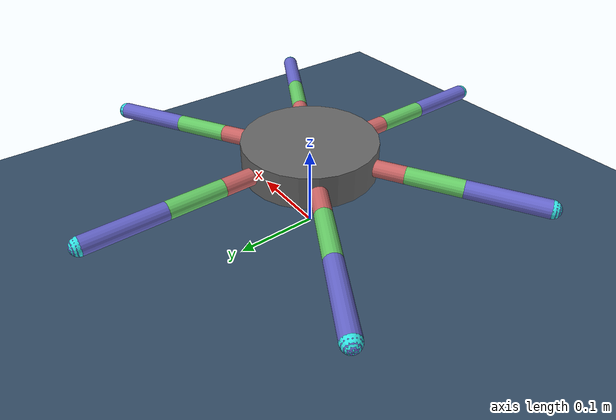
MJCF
<?xml version='1.0' encoding='utf-8'?>
<mujoco model="hexapod"><compiler angle="radian" coordinate="local" /><option timestep="0.003" gravity="0 0 -9.81" integrator="implicitfast" iterations="80" ls_iterations="20" /><option timestep="0.01" gravity="0 0 -9.81" /><default><geom type="capsule" size="0.01" density="500" rgba="0.6 0.6 0.6 1" friction="1.0 0.02 0.002" solref="0.004 1" solimp="0.90 0.95 0.001" /><joint damping="2.5" armature="0.01" limited="true" /><position kp="20" kv="9" /></default><worldbody><geom name="floor" type="plane" size="5 5 0.1" rgba="0.2 0.3 0.4 1" /><body name="torso" pos="0.000000 0.000000 0.100000"><freejoint /><geom name="torso_geom" type="cylinder" size="0.080562 0.020000" rgba="0.4 0.4 0.4 1" /><body name="leg0_hip" pos="0.069769 0.040281 0.000000" euler="0.000000 0.000000 0.523599"><joint name="leg0_coxa" type="hinge" axis="0 0 1" range="-1.047198 1.047198" /><geom name="leg0_coxa_geom" fromto="0.000000 0.000000 0.000000 0.034500 0.000000 0.000000" rgba="0.8 0.4 0.4 1" /><body name="leg0_femur_body" pos="0.034500 0.000000 0.000000"><joint name="leg0_femur" type="hinge" axis="0 -1 0" range="-1.570796 1.570796" /><geom name="leg0_femur_geom" fromto="0.000000 0.000000 0.000000 0.064000 0.000000 0.000000" rgba="0.4 0.8 0.4 1" /><body name="leg0_tibia_body" pos="0.064000 0.000000 0.000000"><joint name="leg0_tibia" type="hinge" axis="0 -1 0" range="-2.443461 0.000000" /><geom name="leg0_tibia_geom" fromto="0.000000 0.000000 0.000000 0.086710 0.000000 0.000000" rgba="0.4 0.4 0.8 1" /><site name="foot_leg0" pos="0.086710 0.000000 0.000000" size="0.01" rgba="0.2 0.9 0.9 1" /></body></body></body><body name="leg1_hip" pos="0.000000 0.080562 0.000000" euler="0.000000 0.000000 1.570796"><joint name="leg1_coxa" type="hinge" axis="0 0 1" range="-1.047198 1.047198" /><geom name="leg1_coxa_geom" fromto="0.000000 0.000000 0.000000 0.034500 0.000000 0.000000" rgba="0.8 0.4 0.4 1" /><body name="leg1_femur_body" pos="0.034500 0.000000 0.000000"><joint name="leg1_femur" type="hinge" axis="0 -1 0" range="-1.570796 1.570796" /><geom name="leg1_femur_geom" fromto="0.000000 0.000000 0.000000 0.064000 0.000000 0.000000" rgba="0.4 0.8 0.4 1" /><body name="leg1_tibia_body" pos="0.064000 0.000000 0.000000"><joint name="leg1_tibia" type="hinge" axis="0 -1 0" range="-2.443461 0.000000" /><geom name="leg1_tibia_geom" fromto="0.000000 0.000000 0.000000 0.086710 0.000000 0.000000" rgba="0.4 0.4 0.8 1" /><site name="foot_leg1" pos="0.086710 0.000000 0.000000" size="0.01" rgba="0.2 0.9 0.9 1" /></body></body></body><body name="leg2_hip" pos="-0.069769 0.040281 0.000000" euler="0.000000 0.000000 2.617994"><joint name="leg2_coxa" type="hinge" axis="0 0 1" range="-1.047198 1.047198" /><geom name="leg2_coxa_geom" fromto="0.000000 0.000000 0.000000 0.034500 0.000000 0.000000" rgba="0.8 0.4 0.4 1" /><body name="leg2_femur_body" pos="0.034500 0.000000 0.000000"><joint name="leg2_femur" type="hinge" axis="0 -1 0" range="-1.570796 1.570796" /><geom name="leg2_femur_geom" fromto="0.000000 0.000000 0.000000 0.064000 0.000000 0.000000" rgba="0.4 0.8 0.4 1" /><body name="leg2_tibia_body" pos="0.064000 0.000000 0.000000"><joint name="leg2_tibia" type="hinge" axis="0 -1 0" range="-2.443461 0.000000" /><geom name="leg2_tibia_geom" fromto="0.000000 0.000000 0.000000 0.086710 0.000000 0.000000" rgba="0.4 0.4 0.8 1" /><site name="foot_leg2" pos="0.086710 0.000000 0.000000" size="0.01" rgba="0.2 0.9 0.9 1" /></body></body></body><body name="leg3_hip" pos="-0.069769 -0.040281 0.000000" euler="0.000000 0.000000 3.665191"><joint name="leg3_coxa" type="hinge" axis="0 0 1" range="-1.047198 1.047198" /><geom name="leg3_coxa_geom" fromto="0.000000 0.000000 0.000000 0.034500 0.000000 0.000000" rgba="0.8 0.4 0.4 1" /><body name="leg3_femur_body" pos="0.034500 0.000000 0.000000"><joint name="leg3_femur" type="hinge" axis="0 -1 0" range="-1.570796 1.570796" /><geom name="leg3_femur_geom" fromto="0.000000 0.000000 0.000000 0.064000 0.000000 0.000000" rgba="0.4 0.8 0.4 1" /><body name="leg3_tibia_body" pos="0.064000 0.000000 0.000000"><joint name="leg3_tibia" type="hinge" axis="0 -1 0" range="-2.443461 0.000000" /><geom name="leg3_tibia_geom" fromto="0.000000 0.000000 0.000000 0.086710 0.000000 0.000000" rgba="0.4 0.4 0.8 1" /><site name="foot_leg3" pos="0.086710 0.000000 0.000000" size="0.01" rgba="0.2 0.9 0.9 1" /></body></body></body><body name="leg4_hip" pos="-0.000000 -0.080562 0.000000" euler="0.000000 0.000000 4.712389"><joint name="leg4_coxa" type="hinge" axis="0 0 1" range="-1.047198 1.047198" /><geom name="leg4_coxa_geom" fromto="0.000000 0.000000 0.000000 0.034500 0.000000 0.000000" rgba="0.8 0.4 0.4 1" /><body name="leg4_femur_body" pos="0.034500 0.000000 0.000000"><joint name="leg4_femur" type="hinge" axis="0 -1 0" range="-1.570796 1.570796" /><geom name="leg4_femur_geom" fromto="0.000000 0.000000 0.000000 0.064000 0.000000 0.000000" rgba="0.4 0.8 0.4 1" /><body name="leg4_tibia_body" pos="0.064000 0.000000 0.000000"><joint name="leg4_tibia" type="hinge" axis="0 -1 0" range="-2.443461 0.000000" /><geom name="leg4_tibia_geom" fromto="0.000000 0.000000 0.000000 0.086710 0.000000 0.000000" rgba="0.4 0.4 0.8 1" /><site name="foot_leg4" pos="0.086710 0.000000 0.000000" size="0.01" rgba="0.2 0.9 0.9 1" /></body></body></body><body name="leg5_hip" pos="0.069769 -0.040281 0.000000" euler="0.000000 0.000000 5.759587"><joint name="leg5_coxa" type="hinge" axis="0 0 1" range="-1.047198 1.047198" /><geom name="leg5_coxa_geom" fromto="0.000000 0.000000 0.000000 0.034500 0.000000 0.000000" rgba="0.8 0.4 0.4 1" /><body name="leg5_femur_body" pos="0.034500 0.000000 0.000000"><joint name="leg5_femur" type="hinge" axis="0 -1 0" range="-1.570796 1.570796" /><geom name="leg5_femur_geom" fromto="0.000000 0.000000 0.000000 0.064000 0.000000 0.000000" rgba="0.4 0.8 0.4 1" /><body name="leg5_tibia_body" pos="0.064000 0.000000 0.000000"><joint name="leg5_tibia" type="hinge" axis="0 -1 0" range="-2.443461 0.000000" /><geom name="leg5_tibia_geom" fromto="0.000000 0.000000 0.000000 0.086710 0.000000 0.000000" rgba="0.4 0.4 0.8 1" /><site name="foot_leg5" pos="0.086710 0.000000 0.000000" size="0.01" rgba="0.2 0.9 0.9 1" /></body></body></body></body></worldbody><actuator><position name="act_leg0_coxa" joint="leg0_coxa" kp="20" kv="9" ctrlrange="-1.047198 1.047198" /><position name="act_leg0_femur" joint="leg0_femur" kp="20" kv="9" ctrlrange="-1.570796 1.570796" /><position name="act_leg0_tibia" joint="leg0_tibia" kp="20" kv="9" ctrlrange="-2.443461 0.000000" /><position name="act_leg1_coxa" joint="leg1_coxa" kp="20" kv="9" ctrlrange="-1.047198 1.047198" /><position name="act_leg1_femur" joint="leg1_femur" kp="20" kv="9" ctrlrange="-1.570796 1.570796" /><position name="act_leg1_tibia" joint="leg1_tibia" kp="20" kv="9" ctrlrange="-2.443461 0.000000" /><position name="act_leg2_coxa" joint="leg2_coxa" kp="20" kv="9" ctrlrange="-1.047198 1.047198" /><position name="act_leg2_femur" joint="leg2_femur" kp="20" kv="9" ctrlrange="-1.570796 1.570796" /><position name="act_leg2_tibia" joint="leg2_tibia" kp="20" kv="9" ctrlrange="-2.443461 0.000000" /><position name="act_leg3_coxa" joint="leg3_coxa" kp="20" kv="9" ctrlrange="-1.047198 1.047198" /><position name="act_leg3_femur" joint="leg3_femur" kp="20" kv="9" ctrlrange="-1.570796 1.570796" /><position name="act_leg3_tibia" joint="leg3_tibia" kp="20" kv="9" ctrlrange="-2.443461 0.000000" /><position name="act_leg4_coxa" joint="leg4_coxa" kp="20" kv="9" ctrlrange="-1.047198 1.047198" /><position name="act_leg4_femur" joint="leg4_femur" kp="20" kv="9" ctrlrange="-1.570796 1.570796" /><position name="act_leg4_tibia" joint="leg4_tibia" kp="20" kv="9" ctrlrange="-2.443461 0.000000" /><position name="act_leg5_coxa" joint="leg5_coxa" kp="20" kv="9" ctrlrange="-1.047198 1.047198" /><position name="act_leg5_femur" joint="leg5_femur" kp="20" kv="9" ctrlrange="-1.570796 1.570796" /><position name="act_leg5_tibia" joint="leg5_tibia" kp="20" kv="9" ctrlrange="-2.443461 0.000000" /></actuator><contact><exclude name="leg0_coxa_femur" body1="leg0_hip" body2="leg0_femur_body" /><exclude name="leg0_femur_tibia" body1="leg0_femur_body" body2="leg0_tibia_body" /><exclude name="leg1_coxa_femur" body1="leg1_hip" body2="leg1_femur_body" /><exclude name="leg1_femur_tibia" body1="leg1_femur_body" body2="leg1_tibia_body" /><exclude name="leg2_coxa_femur" body1="leg2_hip" body2="leg2_femur_body" /><exclude name="leg2_femur_tibia" body1="leg2_femur_body" body2="leg2_tibia_body" /><exclude name="leg3_coxa_femur" body1="leg3_hip" body2="leg3_femur_body" /><exclude name="leg3_femur_tibia" body1="leg3_femur_body" body2="leg3_tibia_body" /><exclude name="leg4_coxa_femur" body1="leg4_hip" body2="leg4_femur_body" /><exclude name="leg4_femur_tibia" body1="leg4_femur_body" body2="leg4_tibia_body" /><exclude name="leg5_coxa_femur" body1="leg5_hip" body2="leg5_femur_body" /><exclude name="leg5_femur_tibia" body1="leg5_femur_body" body2="leg5_tibia_body" /></contact></mujoco>
